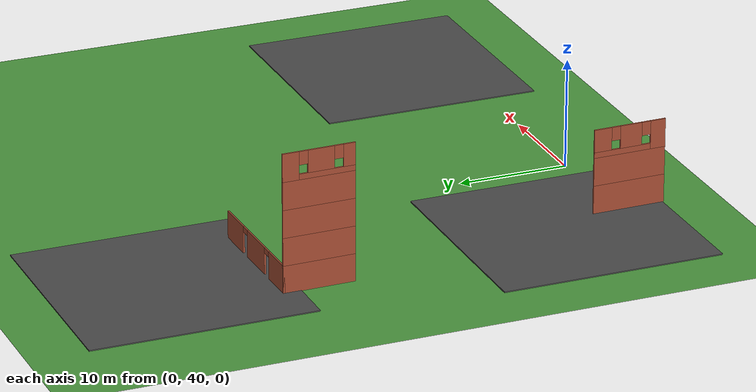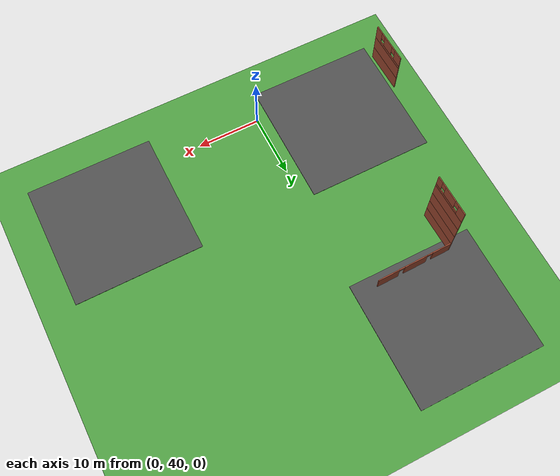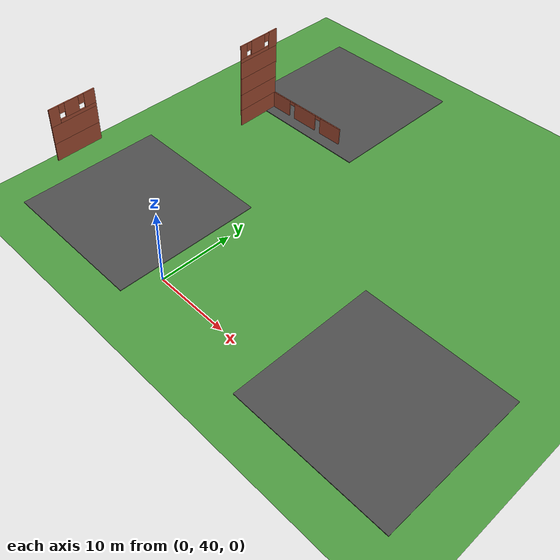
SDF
<sdf version="1.7">
 <world name="default">
  <model name="ground_plane">
   <static>1</static>
   <link name="link">
    <collision name="collision">
     <geometry><plane><normal>0 0 1</normal><size>100 100</size></plane></geometry>
     <surface>
      <contact><collide_bitmask>65535</collide_bitmask></contact>
      <friction><ode><mu>100</mu><mu2>50</mu2></ode></friction>
     </surface>
    </collision>
    <visual name="grass">
     <pose>0 0 -0.1 0 -0 0</pose>
     <cast_shadows>0</cast_shadows>
     <geometry><plane><normal>0 0 1</normal><size>1000 1000</size></plane></geometry>
     <material>
      <script><uri>file://media/materials/scripts/gazebo.material</uri><name>Gazebo/Grass</name></script>
     </material>
    </visual>
   </link>
  </model>
  <model name="asphalt_plane">
   <static>1</static>
   <link name="link">
    <collision name="collision"><geometry><box><size>20 20 0.1</size></box></geometry></collision>
    <visual name="visual">
     <cast_shadows>0</cast_shadows>
     <geometry><box><size>20 20 0.1</size></box></geometry>
     <material>
      <script>
       <uri>model://asphalt_plane/materials/scripts</uri>
       <uri>model://asphalt_plane/materials/textures</uri>
       <name>vrc/asphalt</name>
      </script>
     </material>
    </visual>
   </link>
   <pose>26.7323 45.4974 0 0 -0 0</pose>
  </model>
  <model name="asphalt_plane_1">
   <static>1</static>
   <link name="link">
    <collision name="collision"><geometry><box><size>20 20 0.1</size></box></geometry></collision>
    <visual name="visual">
     <cast_shadows>0</cast_shadows>
     <geometry><box><size>20 20 0.1</size></box></geometry>
     <material>
      <script>
       <uri>model://asphalt_plane/materials/scripts</uri>
       <uri>model://asphalt_plane/materials/textures</uri>
       <name>vrc/asphalt</name>
      </script>
     </material>
    </visual>
   </link>
   <pose>-11.8884 45.4858 0 0 -0 0</pose>
  </model>
  <model name="asphalt_plane_14">
   <static>1</static>
   <link name="link">
    <collision name="collision"><geometry><box><size>20 20 0.1</size></box></geometry></collision>
    <visual name="visual">
     <cast_shadows>0</cast_shadows>
     <geometry><box><size>20 20 0.1</size></box></geometry>
     <material>
      <script>
       <uri>model://asphalt_plane/materials/scripts</uri>
       <uri>model://asphalt_plane/materials/textures</uri>
       <name>vrc/asphalt</name>
      </script>
     </material>
    </visual>
   </link>
   <pose>-9.43728 80.8374 0 0 -0 0</pose>
  </model>
  <model name="my_building_1_clone_0">
   <link name="Wall_79">
    <pose>-4.12557 -6.05 5 0 -0 0</pose>
    <visual name="Wall_79_Visual">
     <pose>0 0 1.25 0 -0 0</pose>
     <geometry><box><size>6.5 0.15 2.5</size></box></geometry>
     <material>
      <script><uri>file://media/materials/scripts/gazebo.material</uri><name>Gazebo/Bricks</name></script>
      <ambient>1 1 1 1</ambient>
      <shader type="pixel"/>
     </material>
     <meta><layer>2</layer></meta>
    </visual>
    <collision name="Wall_79_Collision">
     <pose>0 0 1.25 0 -0 0</pose>
     <geometry><box><size>6.5 0.15 2.5</size></box></geometry>
     <surface>
      <friction>
       <ode><mu>1</mu><mu2>1</mu2><fdir1>0 0 0</fdir1><slip1>0</slip1><slip2>0</slip2></ode>
       <torsional>
        <coefficient>1</coefficient>
        <patch_radius>0</patch_radius>
        <surface_radius>0</surface_radius>
        <use_patch_radius>1</use_patch_radius>
        <ode><slip>0</slip></ode>
       </torsional>
      </friction>
      <bounce><restitution_coefficient>0</restitution_coefficient><threshold>1e+06</threshold></bounce>
      <contact>
       <collide_without_contact>0</collide_without_contact>
       <collide_without_contact_bitmask>1</collide_without_contact_bitmask>
       <collide_bitmask>1</collide_bitmask>
       <ode>
        <soft_cfm>0</soft_cfm>
        <soft_erp>0.2</soft_erp>
        <kp>1e+13</kp>
        <kd>1</kd>
        <max_vel>0.01</max_vel>
        <min_depth>0</min_depth>
       </ode>
       <bullet>
        <split_impulse>1</split_impulse>
        <split_impulse_penetration_threshold>-0.01</split_impulse_penetration_threshold>
        <soft_cfm>0</soft_cfm>
        <soft_erp>0.2</soft_erp>
        <kp>1e+13</kp>
        <kd>1</kd>
       </bullet>
      </contact>
     </surface>
    </collision>
   </link>
   <link name="Wall_83">
    <pose>-4.12557 -6.05 7.5 0 -0 0</pose>
    <visual name="Wall_83_Visual">
     <pose>0 0 1.25 0 -0 0</pose>
     <geometry><box><size>6.5 0.15 2.5</size></box></geometry>
     <material>
      <script><uri>file://media/materials/scripts/gazebo.material</uri><name>Gazebo/Bricks</name></script>
      <ambient>1 1 1 1</ambient>
      <shader type="pixel"/>
     </material>
     <meta><layer>3</layer></meta>
    </visual>
    <collision name="Wall_83_Collision">
     <pose>0 0 1.25 0 -0 0</pose>
     <geometry><box><size>6.5 0.15 2.5</size></box></geometry>
     <surface>
      <friction>
       <ode><mu>1</mu><mu2>1</mu2><fdir1>0 0 0</fdir1><slip1>0</slip1><slip2>0</slip2></ode>
       <torsional>
        <coefficient>1</coefficient>
        <patch_radius>0</patch_radius>
        <surface_radius>0</surface_radius>
        <use_patch_radius>1</use_patch_radius>
        <ode><slip>0</slip></ode>
       </torsional>
      </friction>
      <bounce><restitution_coefficient>0</restitution_coefficient><threshold>1e+06</threshold></bounce>
      <contact>
       <collide_without_contact>0</collide_without_contact>
       <collide_without_contact_bitmask>1</collide_without_contact_bitmask>
       <collide_bitmask>1</collide_bitmask>
       <ode>
        <soft_cfm>0</soft_cfm>
        <soft_erp>0.2</soft_erp>
        <kp>1e+13</kp>
        <kd>1</kd>
        <max_vel>0.01</max_vel>
        <min_depth>0</min_depth>
       </ode>
       <bullet>
        <split_impulse>1</split_impulse>
        <split_impulse_penetration_threshold>-0.01</split_impulse_penetration_threshold>
        <soft_cfm>0</soft_cfm>
        <soft_erp>0.2</soft_erp>
        <kp>1e+13</kp>
        <kd>1</kd>
       </bullet>
      </contact>
     </surface>
    </collision>
   </link>
   <link name="Wall_87">
    <pose>-4.12557 -6.05 10 0 -0 0</pose>
    <visual name="Wall_87_Visual_4">
     <pose>-1.49181 0 1.9 0 -0 0</pose>
     <geometry><box><size>0.8 0.15 1.2</size></box></geometry>
     <material>
      <script><uri>file://media/materials/scripts/gazebo.material</uri><name>Gazebo/Bricks</name></script>
      <ambient>1 1 1 1</ambient>
      <shader type="pixel"/>
     </material>
     <meta><layer>4</layer></meta>
    </visual>
    <visual name="Wall_87_Visual_3">
     <pose>2.46231 0 1.5 0 -0 0</pose>
     <geometry><box><size>1.57539 0.15 2</size></box></geometry>
     <material>
      <script><uri>file://media/materials/scripts/gazebo.material</uri><name>Gazebo/Bricks</name></script>
      <ambient>1 1 1 1</ambient>
      <shader type="pixel"/>
     </material>
     <meta><layer>4</layer></meta>
    </visual>
    <visual name="Wall_87_Visual_0">
     <pose>-2.5709 0 1.25 0 -0 0</pose>
     <geometry><box><size>1.35819 0.15 2.5</size></box></geometry>
     <material>
      <script><uri>file://media/materials/scripts/gazebo.material</uri><name>Gazebo/Bricks</name></script>
      <ambient>1 1 1 1</ambient>
      <shader type="pixel"/>
     </material>
     <meta><layer>4</layer></meta>
    </visual>
    <visual name="Wall_87_Visual_1">
     <pose>0.679097 0 0.25 0 -0 0</pose>
     <geometry><box><size>5.14181 0.15 0.5</size></box></geometry>
     <material>
      <script><uri>file://media/materials/scripts/gazebo.material</uri><name>Gazebo/Bricks</name></script>
      <ambient>1 1 1 1</ambient>
      <shader type="pixel"/>
     </material>
     <meta><layer>4</layer></meta>
    </visual>
    <visual name="Wall_87_Visual_2">
     <pose>-0.108597 0 1.5 0 -0 0</pose>
     <geometry><box><size>1.96642 0.15 2</size></box></geometry>
     <material>
      <script><uri>file://media/materials/scripts/gazebo.material</uri><name>Gazebo/Bricks</name></script>
      <ambient>1 1 1 1</ambient>
      <shader type="pixel"/>
     </material>
     <meta><layer>4</layer></meta>
    </visual>
    <visual name="Wall_87_Visual_5">
     <pose>1.27461 0 1.9 0 -0 0</pose>
     <geometry><box><size>0.8 0.15 1.2</size></box></geometry>
     <material>
      <script><uri>file://media/materials/scripts/gazebo.material</uri><name>Gazebo/Bricks</name></script>
      <ambient>1 1 1 1</ambient>
      <shader type="pixel"/>
     </material>
     <meta><layer>4</layer></meta>
    </visual>
    <collision name="Wall_87_Collision_2">
     <pose>-0.108597 0 1.5 0 -0 0</pose>
     <geometry><box><size>1.96642 0.15 2</size></box></geometry>
     <surface>
      <friction>
       <ode><mu>1</mu><mu2>1</mu2><fdir1>0 0 0</fdir1><slip1>0</slip1><slip2>0</slip2></ode>
       <torsional>
        <coefficient>1</coefficient>
        <patch_radius>0</patch_radius>
        <surface_radius>0</surface_radius>
        <use_patch_radius>1</use_patch_radius>
        <ode><slip>0</slip></ode>
       </torsional>
      </friction>
      <bounce><restitution_coefficient>0</restitution_coefficient><threshold>1e+06</threshold></bounce>
      <contact>
       <collide_without_contact>0</collide_without_contact>
       <collide_without_contact_bitmask>1</collide_without_contact_bitmask>
       <collide_bitmask>1</collide_bitmask>
       <ode>
        <soft_cfm>0</soft_cfm>
        <soft_erp>0.2</soft_erp>
        <kp>1e+13</kp>
        <kd>1</kd>
        <max_vel>0.01</max_vel>
        <min_depth>0</min_depth>
       </ode>
       <bullet>
        <split_impulse>1</split_impulse>
        <split_impulse_penetration_threshold>-0.01</split_impulse_penetration_threshold>
        <soft_cfm>0</soft_cfm>
        <soft_erp>0.2</soft_erp>
        <kp>1e+13</kp>
        <kd>1</kd>
       </bullet>
      </contact>
     </surface>
    </collision>
    <collision name="Wall_87_Collision_3">
     <pose>2.46231 0 1.5 0 -0 0</pose>
     <geometry><box><size>1.57539 0.15 2</size></box></geometry>
     <surface>
      <friction>
       <ode><mu>1</mu><mu2>1</mu2><fdir1>0 0 0</fdir1><slip1>0</slip1><slip2>0</slip2></ode>
       <torsional>
        <coefficient>1</coefficient>
        <patch_radius>0</patch_radius>
        <surface_radius>0</surface_radius>
        <use_patch_radius>1</use_patch_radius>
        <ode><slip>0</slip></ode>
       </torsional>
      </friction>
      <bounce><restitution_coefficient>0</restitution_coefficient><threshold>1e+06</threshold></bounce>
      <contact>
       <collide_without_contact>0</collide_without_contact>
       <collide_without_contact_bitmask>1</collide_without_contact_bitmask>
       <collide_bitmask>1</collide_bitmask>
       <ode>
        <soft_cfm>0</soft_cfm>
        <soft_erp>0.2</soft_erp>
        <kp>1e+13</kp>
        <kd>1</kd>
        <max_vel>0.01</max_vel>
        <min_depth>0</min_depth>
       </ode>
       <bullet>
        <split_impulse>1</split_impulse>
        <split_impulse_penetration_threshold>-0.01</split_impulse_penetration_threshold>
        <soft_cfm>0</soft_cfm>
        <soft_erp>0.2</soft_erp>
        <kp>1e+13</kp>
        <kd>1</kd>
       </bullet>
      </contact>
     </surface>
    </collision>
    <collision name="Wall_87_Collision_0">
     <pose>-2.5709 0 1.25 0 -0 0</pose>
     <geometry><box><size>1.35819 0.15 2.5</size></box></geometry>
     <surface>
      <friction>
       <ode><mu>1</mu><mu2>1</mu2><fdir1>0 0 0</fdir1><slip1>0</slip1><slip2>0</slip2></ode>
       <torsional>
        <coefficient>1</coefficient>
        <patch_radius>0</patch_radius>
        <surface_radius>0</surface_radius>
        <use_patch_radius>1</use_patch_radius>
        <ode><slip>0</slip></ode>
       </torsional>
      </friction>
      <bounce><restitution_coefficient>0</restitution_coefficient><threshold>1e+06</threshold></bounce>
      <contact>
       <collide_without_contact>0</collide_without_contact>
       <collide_without_contact_bitmask>1</collide_without_contact_bitmask>
       <collide_bitmask>1</collide_bitmask>
       <ode>
        <soft_cfm>0</soft_cfm>
        <soft_erp>0.2</soft_erp>
        <kp>1e+13</kp>
        <kd>1</kd>
        <max_vel>0.01</max_vel>
        <min_depth>0</min_depth>
       </ode>
       <bullet>
        <split_impulse>1</split_impulse>
        <split_impulse_penetration_threshold>-0.01</split_impulse_penetration_threshold>
        <soft_cfm>0</soft_cfm>
        <soft_erp>0.2</soft_erp>
        <kp>1e+13</kp>
        <kd>1</kd>
       </bullet>
      </contact>
     </surface>
    </collision>
    <collision name="Wall_87_Collision_5">
     <pose>1.27461 0 1.9 0 -0 0</pose>
     <geometry><box><size>0.8 0.15 1.2</size></box></geometry>
     <surface>
      <friction>
       <ode><mu>1</mu><mu2>1</mu2><fdir1>0 0 0</fdir1><slip1>0</slip1><slip2>0</slip2></ode>
       <torsional>
        <coefficient>1</coefficient>
        <patch_radius>0</patch_radius>
        <surface_radius>0</surface_radius>
        <use_patch_radius>1</use_patch_radius>
        <ode><slip>0</slip></ode>
       </torsional>
      </friction>
      <bounce><restitution_coefficient>0</restitution_coefficient><threshold>1e+06</threshold></bounce>
      <contact>
       <collide_without_contact>0</collide_without_contact>
       <collide_without_contact_bitmask>1</collide_without_contact_bitmask>
       <collide_bitmask>1</collide_bitmask>
       <ode>
        <soft_cfm>0</soft_cfm>
        <soft_erp>0.2</soft_erp>
        <kp>1e+13</kp>
        <kd>1</kd>
        <max_vel>0.01</max_vel>
        <min_depth>0</min_depth>
       </ode>
       <bullet>
        <split_impulse>1</split_impulse>
        <split_impulse_penetration_threshold>-0.01</split_impulse_penetration_threshold>
        <soft_cfm>0</soft_cfm>
        <soft_erp>0.2</soft_erp>
        <kp>1e+13</kp>
        <kd>1</kd>
       </bullet>
      </contact>
     </surface>
    </collision>
    <collision name="Wall_87_Collision_4">
     <pose>-1.49181 0 1.9 0 -0 0</pose>
     <geometry><box><size>0.8 0.15 1.2</size></box></geometry>
     <surface>
      <friction>
       <ode><mu>1</mu><mu2>1</mu2><fdir1>0 0 0</fdir1><slip1>0</slip1><slip2>0</slip2></ode>
       <torsional>
        <coefficient>1</coefficient>
        <patch_radius>0</patch_radius>
        <surface_radius>0</surface_radius>
        <use_patch_radius>1</use_patch_radius>
        <ode><slip>0</slip></ode>
       </torsional>
      </friction>
      <bounce><restitution_coefficient>0</restitution_coefficient><threshold>1e+06</threshold></bounce>
      <contact>
       <collide_without_contact>0</collide_without_contact>
       <collide_without_contact_bitmask>1</collide_without_contact_bitmask>
       <collide_bitmask>1</collide_bitmask>
       <ode>
        <soft_cfm>0</soft_cfm>
        <soft_erp>0.2</soft_erp>
        <kp>1e+13</kp>
        <kd>1</kd>
        <max_vel>0.01</max_vel>
        <min_depth>0</min_depth>
       </ode>
       <bullet>
        <split_impulse>1</split_impulse>
        <split_impulse_penetration_threshold>-0.01</split_impulse_penetration_threshold>
        <soft_cfm>0</soft_cfm>
        <soft_erp>0.2</soft_erp>
        <kp>1e+13</kp>
        <kd>1</kd>
       </bullet>
      </contact>
     </surface>
    </collision>
    <collision name="Wall_87_Collision_1">
     <pose>0.679097 0 0.25 0 -0 0</pose>
     <geometry><box><size>5.14181 0.15 0.5</size></box></geometry>
     <surface>
      <friction>
       <ode><mu>1</mu><mu2>1</mu2><fdir1>0 0 0</fdir1><slip1>0</slip1><slip2>0</slip2></ode>
       <torsional>
        <coefficient>1</coefficient>
        <patch_radius>0</patch_radius>
        <surface_radius>0</surface_radius>
        <use_patch_radius>1</use_patch_radius>
        <ode><slip>0</slip></ode>
       </torsional>
      </friction>
      <bounce><restitution_coefficient>0</restitution_coefficient><threshold>1e+06</threshold></bounce>
      <contact>
       <collide_without_contact>0</collide_without_contact>
       <collide_without_contact_bitmask>1</collide_without_contact_bitmask>
       <collide_bitmask>1</collide_bitmask>
       <ode>
        <soft_cfm>0</soft_cfm>
        <soft_erp>0.2</soft_erp>
        <kp>1e+13</kp>
        <kd>1</kd>
        <max_vel>0.01</max_vel>
        <min_depth>0</min_depth>
       </ode>
       <bullet>
        <split_impulse>1</split_impulse>
        <split_impulse_penetration_threshold>-0.01</split_impulse_penetration_threshold>
        <soft_cfm>0</soft_cfm>
        <soft_erp>0.2</soft_erp>
        <kp>1e+13</kp>
        <kd>1</kd>
       </bullet>
      </contact>
     </surface>
    </collision>
   </link>
   <static>1</static>
   <pose>-26.3728 47.6242 0 0 -0 1.58902</pose>
  </model>
  <model name="my_building_1_clone_1">
   <link name="Wall_19">
    <pose>-0.950574 0 0 0 -0 1.5708</pose>
    <visual name="Wall_19_Visual_3">
     <pose>-2.20979 0 2.25 0 -0 0</pose>
     <geometry><box><size>0.9 0.15 0.5</size></box></geometry>
     <material>
      <script><uri>file://media/materials/scripts/gazebo.material</uri><name>Gazebo/Bricks</name></script>
      <ambient>1 1 1 1</ambient>
      <shader type="pixel"/>
     </material>
     <meta><layer>0</layer></meta>
    </visual>
    <visual name="Wall_19_Visual_2">
     <pose>4.53056 0 1.25 0 -0 0</pose>
     <geometry><box><size>3.18887 0.15 2.5</size></box></geometry>
     <material>
      <script><uri>file://media/materials/scripts/gazebo.material</uri><name>Gazebo/Bricks</name></script>
      <ambient>1 1 1 1</ambient>
      <shader type="pixel"/>
     </material>
     <meta><layer>0</layer></meta>
    </visual>
    <visual name="Wall_19_Visual_4">
     <pose>2.48613 0 2.25 0 -0 0</pose>
     <geometry><box><size>0.9 0.15 0.5</size></box></geometry>
     <material>
      <script><uri>file://media/materials/scripts/gazebo.material</uri><name>Gazebo/Bricks</name></script>
      <ambient>1 1 1 1</ambient>
      <shader type="pixel"/>
     </material>
     <meta><layer>0</layer></meta>
    </visual>
    <visual name="Wall_19_Visual_1">
     <pose>0.138171 0 1.25 0 -0 0</pose>
     <geometry><box><size>3.79591 0.15 2.5</size></box></geometry>
     <material>
      <script><uri>file://media/materials/scripts/gazebo.material</uri><name>Gazebo/Bricks</name></script>
      <ambient>1 1 1 1</ambient>
      <shader type="pixel"/>
     </material>
     <meta><layer>0</layer></meta>
    </visual>
    <visual name="Wall_19_Visual_0">
     <pose>-4.39239 0 1.25 0 -0 0</pose>
     <geometry><box><size>3.46522 0.15 2.5</size></box></geometry>
     <material>
      <script><uri>file://media/materials/scripts/gazebo.material</uri><name>Gazebo/Bricks</name></script>
      <ambient>1 1 1 1</ambient>
      <shader type="pixel"/>
     </material>
     <meta><layer>0</layer></meta>
    </visual>
    <collision name="Wall_19_Collision_0">
     <pose>-4.39239 0 1.25 0 -0 0</pose>
     <geometry><box><size>3.46522 0.15 2.5</size></box></geometry>
     <surface>
      <friction>
       <ode><mu>1</mu><mu2>1</mu2><fdir1>0 0 0</fdir1><slip1>0</slip1><slip2>0</slip2></ode>
       <torsional>
        <coefficient>1</coefficient>
        <patch_radius>0</patch_radius>
        <surface_radius>0</surface_radius>
        <use_patch_radius>1</use_patch_radius>
        <ode><slip>0</slip></ode>
       </torsional>
      </friction>
      <bounce><restitution_coefficient>0</restitution_coefficient><threshold>1e+06</threshold></bounce>
      <contact>
       <collide_without_contact>0</collide_without_contact>
       <collide_without_contact_bitmask>1</collide_without_contact_bitmask>
       <collide_bitmask>1</collide_bitmask>
       <ode>
        <soft_cfm>0</soft_cfm>
        <soft_erp>0.2</soft_erp>
        <kp>1e+13</kp>
        <kd>1</kd>
        <max_vel>0.01</max_vel>
        <min_depth>0</min_depth>
       </ode>
       <bullet>
        <split_impulse>1</split_impulse>
        <split_impulse_penetration_threshold>-0.01</split_impulse_penetration_threshold>
        <soft_cfm>0</soft_cfm>
        <soft_erp>0.2</soft_erp>
        <kp>1e+13</kp>
        <kd>1</kd>
       </bullet>
      </contact>
     </surface>
    </collision>
    <collision name="Wall_19_Collision_2">
     <pose>4.53056 0 1.25 0 -0 0</pose>
     <geometry><box><size>3.18887 0.15 2.5</size></box></geometry>
     <surface>
      <friction>
       <ode><mu>1</mu><mu2>1</mu2><fdir1>0 0 0</fdir1><slip1>0</slip1><slip2>0</slip2></ode>
       <torsional>
        <coefficient>1</coefficient>
        <patch_radius>0</patch_radius>
        <surface_radius>0</surface_radius>
        <use_patch_radius>1</use_patch_radius>
        <ode><slip>0</slip></ode>
       </torsional>
      </friction>
      <bounce><restitution_coefficient>0</restitution_coefficient><threshold>1e+06</threshold></bounce>
      <contact>
       <collide_without_contact>0</collide_without_contact>
       <collide_without_contact_bitmask>1</collide_without_contact_bitmask>
       <collide_bitmask>1</collide_bitmask>
       <ode>
        <soft_cfm>0</soft_cfm>
        <soft_erp>0.2</soft_erp>
        <kp>1e+13</kp>
        <kd>1</kd>
        <max_vel>0.01</max_vel>
        <min_depth>0</min_depth>
       </ode>
       <bullet>
        <split_impulse>1</split_impulse>
        <split_impulse_penetration_threshold>-0.01</split_impulse_penetration_threshold>
        <soft_cfm>0</soft_cfm>
        <soft_erp>0.2</soft_erp>
        <kp>1e+13</kp>
        <kd>1</kd>
       </bullet>
      </contact>
     </surface>
    </collision>
    <collision name="Wall_19_Collision_4">
     <pose>2.48613 0 2.25 0 -0 0</pose>
     <geometry><box><size>0.9 0.15 0.5</size></box></geometry>
     <surface>
      <friction>
       <ode><mu>1</mu><mu2>1</mu2><fdir1>0 0 0</fdir1><slip1>0</slip1><slip2>0</slip2></ode>
       <torsional>
        <coefficient>1</coefficient>
        <patch_radius>0</patch_radius>
        <surface_radius>0</surface_radius>
        <use_patch_radius>1</use_patch_radius>
        <ode><slip>0</slip></ode>
       </torsional>
      </friction>
      <bounce><restitution_coefficient>0</restitution_coefficient><threshold>1e+06</threshold></bounce>
      <contact>
       <collide_without_contact>0</collide_without_contact>
       <collide_without_contact_bitmask>1</collide_without_contact_bitmask>
       <collide_bitmask>1</collide_bitmask>
       <ode>
        <soft_cfm>0</soft_cfm>
        <soft_erp>0.2</soft_erp>
        <kp>1e+13</kp>
        <kd>1</kd>
        <max_vel>0.01</max_vel>
        <min_depth>0</min_depth>
       </ode>
       <bullet>
        <split_impulse>1</split_impulse>
        <split_impulse_penetration_threshold>-0.01</split_impulse_penetration_threshold>
        <soft_cfm>0</soft_cfm>
        <soft_erp>0.2</soft_erp>
        <kp>1e+13</kp>
        <kd>1</kd>
       </bullet>
      </contact>
     </surface>
    </collision>
    <collision name="Wall_19_Collision_3">
     <pose>-2.20979 0 2.25 0 -0 0</pose>
     <geometry><box><size>0.9 0.15 0.5</size></box></geometry>
     <surface>
      <friction>
       <ode><mu>1</mu><mu2>1</mu2><fdir1>0 0 0</fdir1><slip1>0</slip1><slip2>0</slip2></ode>
       <torsional>
        <coefficient>1</coefficient>
        <patch_radius>0</patch_radius>
        <surface_radius>0</surface_radius>
        <use_patch_radius>1</use_patch_radius>
        <ode><slip>0</slip></ode>
       </torsional>
      </friction>
      <bounce><restitution_coefficient>0</restitution_coefficient><threshold>1e+06</threshold></bounce>
      <contact>
       <collide_without_contact>0</collide_without_contact>
       <collide_without_contact_bitmask>1</collide_without_contact_bitmask>
       <collide_bitmask>1</collide_bitmask>
       <ode>
        <soft_cfm>0</soft_cfm>
        <soft_erp>0.2</soft_erp>
        <kp>1e+13</kp>
        <kd>1</kd>
        <max_vel>0.01</max_vel>
        <min_depth>0</min_depth>
       </ode>
       <bullet>
        <split_impulse>1</split_impulse>
        <split_impulse_penetration_threshold>-0.01</split_impulse_penetration_threshold>
        <soft_cfm>0</soft_cfm>
        <soft_erp>0.2</soft_erp>
        <kp>1e+13</kp>
        <kd>1</kd>
       </bullet>
      </contact>
     </surface>
    </collision>
    <collision name="Wall_19_Collision_1">
     <pose>0.138171 0 1.25 0 -0 0</pose>
     <geometry><box><size>3.79591 0.15 2.5</size></box></geometry>
     <surface>
      <friction>
       <ode><mu>1</mu><mu2>1</mu2><fdir1>0 0 0</fdir1><slip1>0</slip1><slip2>0</slip2></ode>
       <torsional>
        <coefficient>1</coefficient>
        <patch_radius>0</patch_radius>
        <surface_radius>0</surface_radius>
        <use_patch_radius>1</use_patch_radius>
        <ode><slip>0</slip></ode>
       </torsional>
      </friction>
      <bounce><restitution_coefficient>0</restitution_coefficient><threshold>1e+06</threshold></bounce>
      <contact>
       <collide_without_contact>0</collide_without_contact>
       <collide_without_contact_bitmask>1</collide_without_contact_bitmask>
       <collide_bitmask>1</collide_bitmask>
       <ode>
        <soft_cfm>0</soft_cfm>
        <soft_erp>0.2</soft_erp>
        <kp>1e+13</kp>
        <kd>1</kd>
        <max_vel>0.01</max_vel>
        <min_depth>0</min_depth>
       </ode>
       <bullet>
        <split_impulse>1</split_impulse>
        <split_impulse_penetration_threshold>-0.01</split_impulse_penetration_threshold>
        <soft_cfm>0</soft_cfm>
        <soft_erp>0.2</soft_erp>
        <kp>1e+13</kp>
        <kd>1</kd>
       </bullet>
      </contact>
     </surface>
    </collision>
   </link>
   <link name="Wall_20">
    <pose>-4.12557 6.05 0 0 -0 3.14159</pose>
    <visual name="Wall_20_Visual">
     <pose>0 0 1.25 0 -0 0</pose>
     <geometry><box><size>6.5 0.15 2.5</size></box></geometry>
     <material>
      <script><uri>file://media/materials/scripts/gazebo.material</uri><name>Gazebo/Bricks</name></script>
      <ambient>1 1 1 1</ambient>
      <shader type="pixel"/>
     </material>
     <meta><layer>0</layer></meta>
    </visual>
    <collision name="Wall_20_Collision">
     <pose>0 0 1.25 0 -0 0</pose>
     <geometry><box><size>6.5 0.15 2.5</size></box></geometry>
     <surface>
      <friction>
       <ode><mu>1</mu><mu2>1</mu2><fdir1>0 0 0</fdir1><slip1>0</slip1><slip2>0</slip2></ode>
       <torsional>
        <coefficient>1</coefficient>
        <patch_radius>0</patch_radius>
        <surface_radius>0</surface_radius>
        <use_patch_radius>1</use_patch_radius>
        <ode><slip>0</slip></ode>
       </torsional>
      </friction>
      <bounce><restitution_coefficient>0</restitution_coefficient><threshold>1e+06</threshold></bounce>
      <contact>
       <collide_without_contact>0</collide_without_contact>
       <collide_without_contact_bitmask>1</collide_without_contact_bitmask>
       <collide_bitmask>1</collide_bitmask>
       <ode>
        <soft_cfm>0</soft_cfm>
        <soft_erp>0.2</soft_erp>
        <kp>1e+13</kp>
        <kd>1</kd>
        <max_vel>0.01</max_vel>
        <min_depth>0</min_depth>
       </ode>
       <bullet>
        <split_impulse>1</split_impulse>
        <split_impulse_penetration_threshold>-0.01</split_impulse_penetration_threshold>
        <soft_cfm>0</soft_cfm>
        <soft_erp>0.2</soft_erp>
        <kp>1e+13</kp>
        <kd>1</kd>
       </bullet>
      </contact>
     </surface>
    </collision>
   </link>
   <link name="Wall_77">
    <pose>-4.12557 6.05 2.5 0 -0 3.14159</pose>
    <visual name="Wall_77_Visual">
     <pose>0 0 1.25 0 -0 0</pose>
     <geometry><box><size>6.5 0.15 2.5</size></box></geometry>
     <material>
      <script><uri>file://media/materials/scripts/gazebo.material</uri><name>Gazebo/Bricks</name></script>
      <ambient>1 1 1 1</ambient>
      <shader type="pixel"/>
     </material>
     <meta><layer>1</layer></meta>
    </visual>
    <collision name="Wall_77_Collision">
     <pose>0 0 1.25 0 -0 0</pose>
     <geometry><box><size>6.5 0.15 2.5</size></box></geometry>
     <surface>
      <friction>
       <ode><mu>1</mu><mu2>1</mu2><fdir1>0 0 0</fdir1><slip1>0</slip1><slip2>0</slip2></ode>
       <torsional>
        <coefficient>1</coefficient>
        <patch_radius>0</patch_radius>
        <surface_radius>0</surface_radius>
        <use_patch_radius>1</use_patch_radius>
        <ode><slip>0</slip></ode>
       </torsional>
      </friction>
      <bounce><restitution_coefficient>0</restitution_coefficient><threshold>1e+06</threshold></bounce>
      <contact>
       <collide_without_contact>0</collide_without_contact>
       <collide_without_contact_bitmask>1</collide_without_contact_bitmask>
       <collide_bitmask>1</collide_bitmask>
       <ode>
        <soft_cfm>0</soft_cfm>
        <soft_erp>0.2</soft_erp>
        <kp>1e+13</kp>
        <kd>1</kd>
        <max_vel>0.01</max_vel>
        <min_depth>0</min_depth>
       </ode>
       <bullet>
        <split_impulse>1</split_impulse>
        <split_impulse_penetration_threshold>-0.01</split_impulse_penetration_threshold>
        <soft_cfm>0</soft_cfm>
        <soft_erp>0.2</soft_erp>
        <kp>1e+13</kp>
        <kd>1</kd>
       </bullet>
      </contact>
     </surface>
    </collision>
   </link>
   <link name="Wall_81">
    <pose>-4.12557 6.05 5 0 -0 3.14159</pose>
    <visual name="Wall_81_Visual">
     <pose>0 0 1.25 0 -0 0</pose>
     <geometry><box><size>6.5 0.15 2.5</size></box></geometry>
     <material>
      <script><uri>file://media/materials/scripts/gazebo.material</uri><name>Gazebo/Bricks</name></script>
      <ambient>1 1 1 1</ambient>
      <shader type="pixel"/>
     </material>
     <meta><layer>2</layer></meta>
    </visual>
    <collision name="Wall_81_Collision">
     <pose>0 0 1.25 0 -0 0</pose>
     <geometry><box><size>6.5 0.15 2.5</size></box></geometry>
     <surface>
      <friction>
       <ode><mu>1</mu><mu2>1</mu2><fdir1>0 0 0</fdir1><slip1>0</slip1><slip2>0</slip2></ode>
       <torsional>
        <coefficient>1</coefficient>
        <patch_radius>0</patch_radius>
        <surface_radius>0</surface_radius>
        <use_patch_radius>1</use_patch_radius>
        <ode><slip>0</slip></ode>
       </torsional>
      </friction>
      <bounce><restitution_coefficient>0</restitution_coefficient><threshold>1e+06</threshold></bounce>
      <contact>
       <collide_without_contact>0</collide_without_contact>
       <collide_without_contact_bitmask>1</collide_without_contact_bitmask>
       <collide_bitmask>1</collide_bitmask>
       <ode>
        <soft_cfm>0</soft_cfm>
        <soft_erp>0.2</soft_erp>
        <kp>1e+13</kp>
        <kd>1</kd>
        <max_vel>0.01</max_vel>
        <min_depth>0</min_depth>
       </ode>
       <bullet>
        <split_impulse>1</split_impulse>
        <split_impulse_penetration_threshold>-0.01</split_impulse_penetration_threshold>
        <soft_cfm>0</soft_cfm>
        <soft_erp>0.2</soft_erp>
        <kp>1e+13</kp>
        <kd>1</kd>
       </bullet>
      </contact>
     </surface>
    </collision>
   </link>
   <link name="Wall_85">
    <pose>-4.12557 6.05 7.5 0 -0 3.14159</pose>
    <visual name="Wall_85_Visual">
     <pose>0 0 1.25 0 -0 0</pose>
     <geometry><box><size>6.5 0.15 2.5</size></box></geometry>
     <material>
      <script><uri>file://media/materials/scripts/gazebo.material</uri><name>Gazebo/Bricks</name></script>
      <ambient>1 1 1 1</ambient>
      <shader type="pixel"/>
     </material>
     <meta><layer>3</layer></meta>
    </visual>
    <collision name="Wall_85_Collision">
     <pose>0 0 1.25 0 -0 0</pose>
     <geometry><box><size>6.5 0.15 2.5</size></box></geometry>
     <surface>
      <friction>
       <ode><mu>1</mu><mu2>1</mu2><fdir1>0 0 0</fdir1><slip1>0</slip1><slip2>0</slip2></ode>
       <torsional>
        <coefficient>1</coefficient>
        <patch_radius>0</patch_radius>
        <surface_radius>0</surface_radius>
        <use_patch_radius>1</use_patch_radius>
        <ode><slip>0</slip></ode>
       </torsional>
      </friction>
      <bounce><restitution_coefficient>0</restitution_coefficient><threshold>1e+06</threshold></bounce>
      <contact>
       <collide_without_contact>0</collide_without_contact>
       <collide_without_contact_bitmask>1</collide_without_contact_bitmask>
       <collide_bitmask>1</collide_bitmask>
       <ode>
        <soft_cfm>0</soft_cfm>
        <soft_erp>0.2</soft_erp>
        <kp>1e+13</kp>
        <kd>1</kd>
        <max_vel>0.01</max_vel>
        <min_depth>0</min_depth>
       </ode>
       <bullet>
        <split_impulse>1</split_impulse>
        <split_impulse_penetration_threshold>-0.01</split_impulse_penetration_threshold>
        <soft_cfm>0</soft_cfm>
        <soft_erp>0.2</soft_erp>
        <kp>1e+13</kp>
        <kd>1</kd>
       </bullet>
      </contact>
     </surface>
    </collision>
   </link>
   <link name="Wall_89">
    <pose>-4.12557 6.05 10 0 -0 3.14159</pose>
    <visual name="Wall_89_Visual_5">
     <pose>1.78441 0 1.9 0 -0 0</pose>
     <geometry><box><size>0.8 0.15 1.2</size></box></geometry>
     <material>
      <script><uri>file://media/materials/scripts/gazebo.material</uri><name>Gazebo/Bricks</name></script>
      <ambient>1 1 1 1</ambient>
      <shader type="pixel"/>
     </material>
     <meta><layer>4</layer></meta>
    </visual>
    <visual name="Wall_89_Visual_2">
     <pose>0.201698 0 1.5 0 -0 0</pose>
     <geometry><box><size>2.36542 0.15 2</size></box></geometry>
     <material>
      <script><uri>file://media/materials/scripts/gazebo.material</uri><name>Gazebo/Bricks</name></script>
      <ambient>1 1 1 1</ambient>
      <shader type="pixel"/>
     </material>
     <meta><layer>4</layer></meta>
    </visual>
    <visual name="Wall_89_Visual_4">
     <pose>-1.38101 0 1.9 0 -0 0</pose>
     <geometry><box><size>0.8 0.15 1.2</size></box></geometry>
     <material>
      <script><uri>file://media/materials/scripts/gazebo.material</uri><name>Gazebo/Bricks</name></script>
      <ambient>1 1 1 1</ambient>
      <shader type="pixel"/>
     </material>
     <meta><layer>4</layer></meta>
    </visual>
    <visual name="Wall_89_Visual_3">
     <pose>2.7172 0 1.5 0 -0 0</pose>
     <geometry><box><size>1.06559 0.15 2</size></box></geometry>
     <material>
      <script><uri>file://media/materials/scripts/gazebo.material</uri><name>Gazebo/Bricks</name></script>
      <ambient>1 1 1 1</ambient>
      <shader type="pixel"/>
     </material>
     <meta><layer>4</layer></meta>
    </visual>
    <visual name="Wall_89_Visual_0">
     <pose>-2.51551 0 1.25 0 -0 0</pose>
     <geometry><box><size>1.46899 0.15 2.5</size></box></geometry>
     <material>
      <script><uri>file://media/materials/scripts/gazebo.material</uri><name>Gazebo/Bricks</name></script>
      <ambient>1 1 1 1</ambient>
      <shader type="pixel"/>
     </material>
     <meta><layer>4</layer></meta>
    </visual>
    <visual name="Wall_89_Visual_1">
     <pose>0.734493 0 0.25 0 -0 0</pose>
     <geometry><box><size>5.03101 0.15 0.5</size></box></geometry>
     <material>
      <script><uri>file://media/materials/scripts/gazebo.material</uri><name>Gazebo/Bricks</name></script>
      <ambient>1 1 1 1</ambient>
      <shader type="pixel"/>
     </material>
     <meta><layer>4</layer></meta>
    </visual>
    <collision name="Wall_89_Collision_5">
     <pose>1.78441 0 1.9 0 -0 0</pose>
     <geometry><box><size>0.8 0.15 1.2</size></box></geometry>
     <surface>
      <friction>
       <ode><mu>1</mu><mu2>1</mu2><fdir1>0 0 0</fdir1><slip1>0</slip1><slip2>0</slip2></ode>
       <torsional>
        <coefficient>1</coefficient>
        <patch_radius>0</patch_radius>
        <surface_radius>0</surface_radius>
        <use_patch_radius>1</use_patch_radius>
        <ode><slip>0</slip></ode>
       </torsional>
      </friction>
      <bounce><restitution_coefficient>0</restitution_coefficient><threshold>1e+06</threshold></bounce>
      <contact>
       <collide_without_contact>0</collide_without_contact>
       <collide_without_contact_bitmask>1</collide_without_contact_bitmask>
       <collide_bitmask>1</collide_bitmask>
       <ode>
        <soft_cfm>0</soft_cfm>
        <soft_erp>0.2</soft_erp>
        <kp>1e+13</kp>
        <kd>1</kd>
        <max_vel>0.01</max_vel>
        <min_depth>0</min_depth>
       </ode>
       <bullet>
        <split_impulse>1</split_impulse>
        <split_impulse_penetration_threshold>-0.01</split_impulse_penetration_threshold>
        <soft_cfm>0</soft_cfm>
        <soft_erp>0.2</soft_erp>
        <kp>1e+13</kp>
        <kd>1</kd>
       </bullet>
      </contact>
     </surface>
    </collision>
    <collision name="Wall_89_Collision_4">
     <pose>-1.38101 0 1.9 0 -0 0</pose>
     <geometry><box><size>0.8 0.15 1.2</size></box></geometry>
     <surface>
      <friction>
       <ode><mu>1</mu><mu2>1</mu2><fdir1>0 0 0</fdir1><slip1>0</slip1><slip2>0</slip2></ode>
       <torsional>
        <coefficient>1</coefficient>
        <patch_radius>0</patch_radius>
        <surface_radius>0</surface_radius>
        <use_patch_radius>1</use_patch_radius>
        <ode><slip>0</slip></ode>
       </torsional>
      </friction>
      <bounce><restitution_coefficient>0</restitution_coefficient><threshold>1e+06</threshold></bounce>
      <contact>
       <collide_without_contact>0</collide_without_contact>
       <collide_without_contact_bitmask>1</collide_without_contact_bitmask>
       <collide_bitmask>1</collide_bitmask>
       <ode>
        <soft_cfm>0</soft_cfm>
        <soft_erp>0.2</soft_erp>
        <kp>1e+13</kp>
        <kd>1</kd>
        <max_vel>0.01</max_vel>
        <min_depth>0</min_depth>
       </ode>
       <bullet>
        <split_impulse>1</split_impulse>
        <split_impulse_penetration_threshold>-0.01</split_impulse_penetration_threshold>
        <soft_cfm>0</soft_cfm>
        <soft_erp>0.2</soft_erp>
        <kp>1e+13</kp>
        <kd>1</kd>
       </bullet>
      </contact>
     </surface>
    </collision>
    <collision name="Wall_89_Collision_1">
     <pose>0.734493 0 0.25 0 -0 0</pose>
     <geometry><box><size>5.03101 0.15 0.5</size></box></geometry>
     <surface>
      <friction>
       <ode><mu>1</mu><mu2>1</mu2><fdir1>0 0 0</fdir1><slip1>0</slip1><slip2>0</slip2></ode>
       <torsional>
        <coefficient>1</coefficient>
        <patch_radius>0</patch_radius>
        <surface_radius>0</surface_radius>
        <use_patch_radius>1</use_patch_radius>
        <ode><slip>0</slip></ode>
       </torsional>
      </friction>
      <bounce><restitution_coefficient>0</restitution_coefficient><threshold>1e+06</threshold></bounce>
      <contact>
       <collide_without_contact>0</collide_without_contact>
       <collide_without_contact_bitmask>1</collide_without_contact_bitmask>
       <collide_bitmask>1</collide_bitmask>
       <ode>
        <soft_cfm>0</soft_cfm>
        <soft_erp>0.2</soft_erp>
        <kp>1e+13</kp>
        <kd>1</kd>
        <max_vel>0.01</max_vel>
        <min_depth>0</min_depth>
       </ode>
       <bullet>
        <split_impulse>1</split_impulse>
        <split_impulse_penetration_threshold>-0.01</split_impulse_penetration_threshold>
        <soft_cfm>0</soft_cfm>
        <soft_erp>0.2</soft_erp>
        <kp>1e+13</kp>
        <kd>1</kd>
       </bullet>
      </contact>
     </surface>
    </collision>
    <collision name="Wall_89_Collision_0">
     <pose>-2.51551 0 1.25 0 -0 0</pose>
     <geometry><box><size>1.46899 0.15 2.5</size></box></geometry>
     <surface>
      <friction>
       <ode><mu>1</mu><mu2>1</mu2><fdir1>0 0 0</fdir1><slip1>0</slip1><slip2>0</slip2></ode>
       <torsional>
        <coefficient>1</coefficient>
        <patch_radius>0</patch_radius>
        <surface_radius>0</surface_radius>
        <use_patch_radius>1</use_patch_radius>
        <ode><slip>0</slip></ode>
       </torsional>
      </friction>
      <bounce><restitution_coefficient>0</restitution_coefficient><threshold>1e+06</threshold></bounce>
      <contact>
       <collide_without_contact>0</collide_without_contact>
       <collide_without_contact_bitmask>1</collide_without_contact_bitmask>
       <collide_bitmask>1</collide_bitmask>
       <ode>
        <soft_cfm>0</soft_cfm>
        <soft_erp>0.2</soft_erp>
        <kp>1e+13</kp>
        <kd>1</kd>
        <max_vel>0.01</max_vel>
        <min_depth>0</min_depth>
       </ode>
       <bullet>
        <split_impulse>1</split_impulse>
        <split_impulse_penetration_threshold>-0.01</split_impulse_penetration_threshold>
        <soft_cfm>0</soft_cfm>
        <soft_erp>0.2</soft_erp>
        <kp>1e+13</kp>
        <kd>1</kd>
       </bullet>
      </contact>
     </surface>
    </collision>
    <collision name="Wall_89_Collision_2">
     <pose>0.201698 0 1.5 0 -0 0</pose>
     <geometry><box><size>2.36542 0.15 2</size></box></geometry>
     <surface>
      <friction>
       <ode><mu>1</mu><mu2>1</mu2><fdir1>0 0 0</fdir1><slip1>0</slip1><slip2>0</slip2></ode>
       <torsional>
        <coefficient>1</coefficient>
        <patch_radius>0</patch_radius>
        <surface_radius>0</surface_radius>
        <use_patch_radius>1</use_patch_radius>
        <ode><slip>0</slip></ode>
       </torsional>
      </friction>
      <bounce><restitution_coefficient>0</restitution_coefficient><threshold>1e+06</threshold></bounce>
      <contact>
       <collide_without_contact>0</collide_without_contact>
       <collide_without_contact_bitmask>1</collide_without_contact_bitmask>
       <collide_bitmask>1</collide_bitmask>
       <ode>
        <soft_cfm>0</soft_cfm>
        <soft_erp>0.2</soft_erp>
        <kp>1e+13</kp>
        <kd>1</kd>
        <max_vel>0.01</max_vel>
        <min_depth>0</min_depth>
       </ode>
       <bullet>
        <split_impulse>1</split_impulse>
        <split_impulse_penetration_threshold>-0.01</split_impulse_penetration_threshold>
        <soft_cfm>0</soft_cfm>
        <soft_erp>0.2</soft_erp>
        <kp>1e+13</kp>
        <kd>1</kd>
       </bullet>
      </contact>
     </surface>
    </collision>
    <collision name="Wall_89_Collision_3">
     <pose>2.7172 0 1.5 0 -0 0</pose>
     <geometry><box><size>1.06559 0.15 2</size></box></geometry>
     <surface>
      <friction>
       <ode><mu>1</mu><mu2>1</mu2><fdir1>0 0 0</fdir1><slip1>0</slip1><slip2>0</slip2></ode>
       <torsional>
        <coefficient>1</coefficient>
        <patch_radius>0</patch_radius>
        <surface_radius>0</surface_radius>
        <use_patch_radius>1</use_patch_radius>
        <ode><slip>0</slip></ode>
       </torsional>
      </friction>
      <bounce><restitution_coefficient>0</restitution_coefficient><threshold>1e+06</threshold></bounce>
      <contact>
       <collide_without_contact>0</collide_without_contact>
       <collide_without_contact_bitmask>1</collide_without_contact_bitmask>
       <collide_bitmask>1</collide_bitmask>
       <ode>
        <soft_cfm>0</soft_cfm>
        <soft_erp>0.2</soft_erp>
        <kp>1e+13</kp>
        <kd>1</kd>
        <max_vel>0.01</max_vel>
        <min_depth>0</min_depth>
       </ode>
       <bullet>
        <split_impulse>1</split_impulse>
        <split_impulse_penetration_threshold>-0.01</split_impulse_penetration_threshold>
        <soft_cfm>0</soft_cfm>
        <soft_erp>0.2</soft_erp>
        <kp>1e+13</kp>
        <kd>1</kd>
       </bullet>
      </contact>
     </surface>
    </collision>
   </link>
   <static>1</static>
   <pose>-9.16053 73.4537 0 0 -0 1.58902</pose>
  </model>
 </world>
</sdf>
